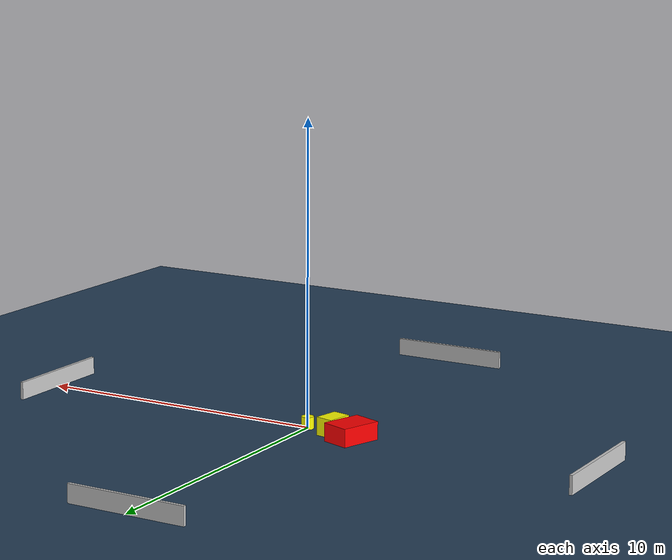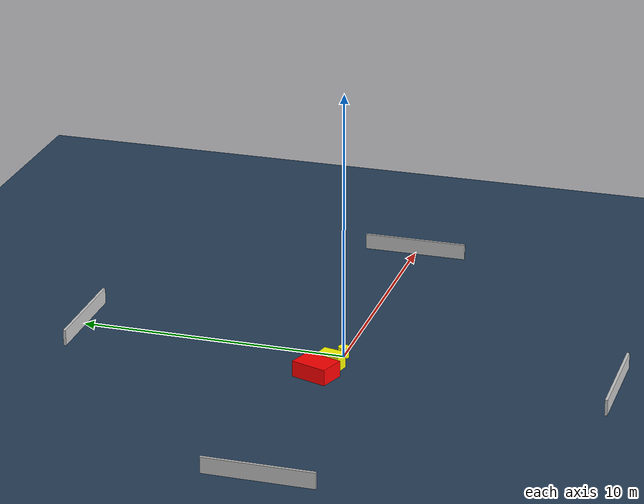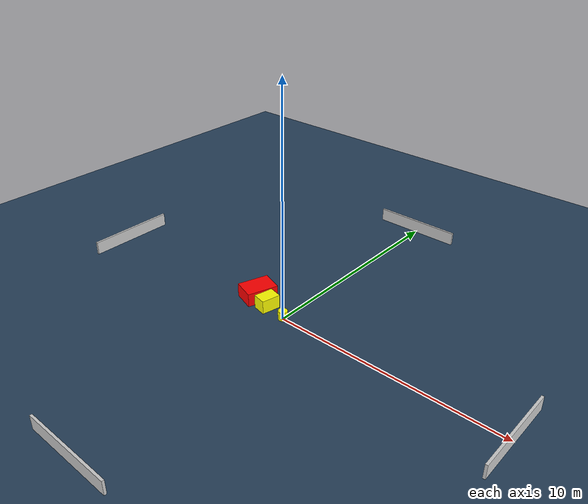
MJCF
<?xml version="1.0" ?>
<mujoco model="generated_environment">
  <option timestep="0.01" integrator="RK4" cone="elliptic"/>
  <default>
    <geom density="1"/>
  </default>
  <asset>
    <texture builtin="gradient" height="3072" name="skybox" rgb1="0.3 0.5 0.7" rgb2="0 0 0" type="skybox" width="512"/>
    <texture builtin="checker" height="300" name="groundplane" rgb1="0.2 0.3 0.4" rgb2="0.1 0.2 0.3" type="2d" width="300"/>
    <material name="groundplane" reflectance="0.2" texrepeat="5 5" texture="groundplane"/>
  </asset>
  <worldbody>
    <light dir="0 0 -1" directional="true" pos="0 0 1.5"/>
    <geom condim="3" friction="0.5 0.005 0.001" material="groundplane" name="floor" pos="0 0 0" size="0 0 0.05" type="plane"/>
    <body name="walls">
      <geom name="wall_1" condim="4" pos="-10.0 0.0 0.3" rgba="0.800000011920929 0.800000011920929 0.800000011920929 1.0" size="0.05 2.0 0.3" type="box"/>
      <geom name="wall_2" condim="4" pos="10.0 0.0 0.3" rgba="0.800000011920929 0.800000011920929 0.800000011920929 1.0" size="0.05 2.0 0.3" type="box"/>
      <geom name="wall_3" condim="4" pos="0.0 -10.0 0.3" rgba="0.800000011920929 0.800000011920929 0.800000011920929 1.0" size="2.0 0.05 0.3" type="box"/>
      <geom name="wall_4" condim="4" pos="0.0 10.0 0.3" rgba="0.800000011920929 0.800000011920929 0.800000011920929 1.0" size="2.0 0.05 0.3" type="box"/>
    </body>
    <body name="robot">
      <joint name="joint_x" type="slide" pos="0 0 0" axis="1 0 0"/>
      <joint name="joint_y" type="slide" pos="0 0 0" axis="0 1 0"/>
      <geom name="robot" type="cylinder" pos="0.0 0.0 0.2" size="0.2 0.2 0.0" mass="5.0" friction="1.0 0.005 0.0001" condim="4" rgba="1.0 1.0 0.0 1.0"/>
    </body>
    <body name="obstacle_1_movable">
      <geom name="obstacle_1_movable" condim="4" pos="-1.0227597607209769 0.1681056789873073 0.3" euler="0 0 347.73252998179186" friction="0.0 0.005 0.001" rgba="1.0 1.0 0.0 1.0" size="0.29972363496071225 0.42365785746330614 0.3" type="box" mass="0.1"/>
      <joint type="free"/>
    </body>
    <body name="obstacle_2_static">
      <geom name="obstacle_2_static" condim="4" pos="-1.8589116089994921 0.47231320070963445 0.3" euler="0 0 341.1236054841447" friction="0.0 0.005 0.001" rgba="1.0 0.0 0.0 1.0" size="0.4875119927594585 0.691986989654872 0.3" type="box"/>
    </body>
  </worldbody>
  <actuator>
    <motor name="actuator_x" joint="joint_x" gear="1" ctrlrange="-1 1"/>
    <motor name="actuator_y" joint="joint_y" gear="1" ctrlrange="-1 1"/>
  </actuator>
</mujoco>
